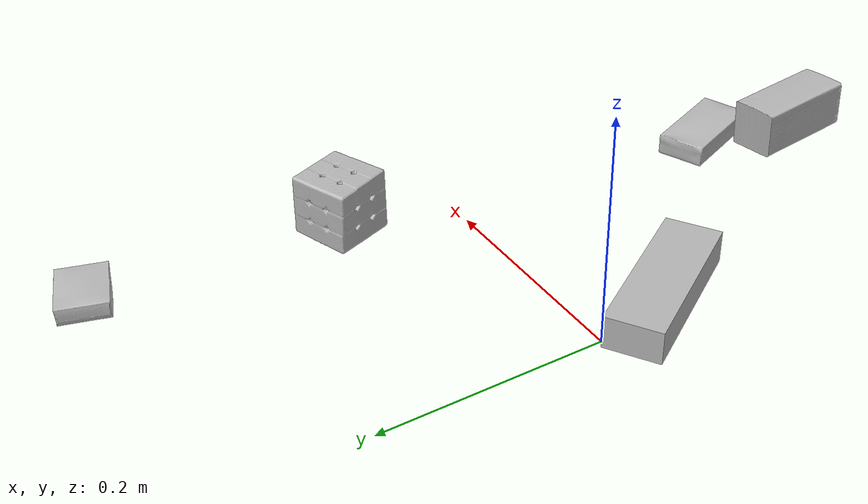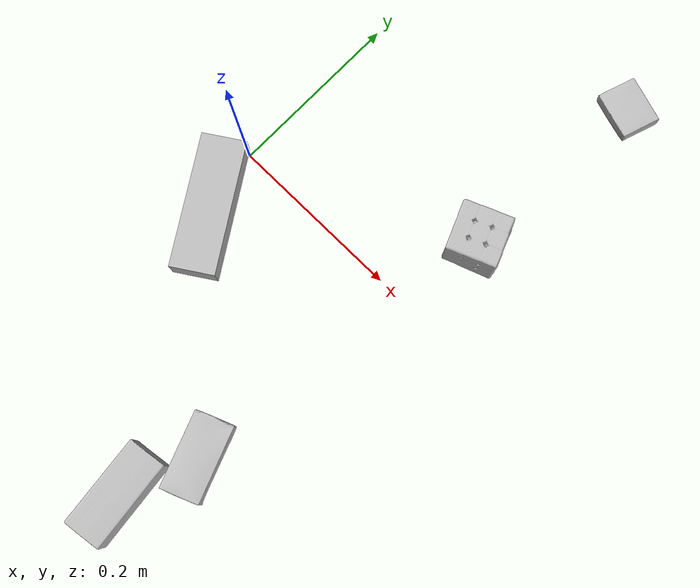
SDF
<sdf version="1.4">
  <world name="default">
    <light name="light1" type="point">
      <pose>0 0 1 0 0 0</pose>
      <diffuse>3 3 3 1</diffuse>
      <specular>3 3 3 1</specular>
    </light>
    <light name="light2" type="point">
      <pose>0 0.5 2 0 0 0</pose>
      <diffuse>1 1 1 1</diffuse>
      <specular>1 1 1 1</specular>
    </light>
    <light name="light3" type="point">
      <pose>0 0.5 2 0 0 0</pose>
      <diffuse>3 3 3 1</diffuse>
      <specular>3 3 3 1</specular>
    </light>
    <scene>
      <ambient>0.7 0.7 0.7</ambient>
    </scene>
    <model name="box1">
      <link name="link_box1">
        <collision name="default">
          <geometry>
            <mesh>
              <uri>model://wood_block/collision_meshes/collision.obj</uri>
              <scale>0.5 0.5 0.5</scale>
            </mesh>
          </geometry>
          <surface>
            <friction>
              <ode>
                <mu>0.5</mu>
                <mu2>0.5</mu2>
              </ode>
            </friction>
          <contact>
        <ode>
            <max_vel>0</max_vel>
            <min_depth>0.0001</min_depth>
            <kp>1e8</kp>
        </ode>
    </contact></surface>
        </collision>
        <visual name="default">
          <geometry>
            <mesh>
              <uri>model://wood_block/visual_meshes/visual.dae</uri>
              <scale>0.5 0.5 0.5</scale>
            </mesh>
          </geometry>
        </visual>
        <inertial>
          <mass>0.21249504387378693</mass>
          <pose>-2.906657528001233e-06 -0.00028540470520965755 0.00013204290007706732 -0.05220867383734612 -0.005192696375656893 -0.006861378651330705</pose>
          <inertia>
            <ixx>7.108762e-05</ixx>
            <iyy>0.00022456584</iyy>
            <izz>0.00022372584</izz>
            <ixy>0</ixy>
            <ixz>0</ixz>
            <iyz>0</iyz>
          </inertia>
        </inertial>
      </link>
      <pose>0.16645067930221558 -0.3456214666366577 0.02252623438835144 -0.03550607087471154 -0.008076960694448628 -1.447048230305522</pose>
    </model>
    <model name="box2">
      <link name="link_box2">
        <collision name="default">
          <geometry>
            <mesh>
              <uri>model://sugar_box/collision_meshes/collision.obj</uri>
              <scale>0.5 0.5 0.5</scale>
            </mesh>
          </geometry>
          <surface>
            <friction>
              <ode>
                <mu>0.5</mu>
                <mu2>0.5</mu2>
              </ode>
            </friction>
          <contact>
        <ode>
            <max_vel>0</max_vel>
            <min_depth>0.0001</min_depth>
            <kp>1e8</kp>
        </ode>
    </contact></surface>
        </collision>
        <visual name="default">
          <geometry>
            <mesh>
              <uri>model://sugar_box/visual_meshes/visual.dae</uri>
              <scale>0.5 0.5 0.5</scale>
            </mesh>
          </geometry>
        </visual>
        <inertial>
          <mass>0.11089310050010681</mass>
          <pose>0.0005171863595023751 1.924554817378521e-05 -0.00018182402709499002 -0.0004046262999979174 0.001050663638672674 0.002615379254561693</pose>
          <inertia>
            <ixx>2.3098954e-05</ixx>
            <iyy>7.4660566e-05</iyy>
            <izz>8.9377616e-05</izz>
            <ixy>0</ixy>
            <ixz>0</ixz>
            <iyz>0</iyz>
          </inertia>
        </inertial>
      </link>
      <pose>0.19625724852085114 -0.26468425989151 0.011399311013519764 0.0007649533075476036 -0.02343190369910897 -1.2038321621129684</pose>
    </model>
    <model name="box3">
      <link name="link_box3">
        <collision name="default">
          <geometry>
            <mesh>
              <uri>model://jenga/collision_meshes/collision.obj</uri>
              <scale>1.0 1.0 1.0</scale>
            </mesh>
          </geometry>
          <surface>
            <friction>
              <ode>
                <mu>0.5</mu>
                <mu2>0.5</mu2>
              </ode>
            </friction>
          <contact>
        <ode>
            <max_vel>0</max_vel>
            <min_depth>0.0001</min_depth>
            <kp>1e8</kp>
        </ode>
    </contact></surface>
        </collision>
        <visual name="default">
          <geometry>
            <mesh>
              <uri>model://jenga/visual_meshes/visual.dae</uri>
              <scale>1.0 1.0 1.0</scale>
            </mesh>
          </geometry>
        </visual>
        <inertial>
          <mass>0.163609579205513</mass>
          <pose>-2.502855807051674e-07 -0.0001025000965455547 -4.0923401684267446e-05 0.0 -7.34215461761844e-07 0.0</pose>
          <inertia>
            <ixx>4.527474e-05</ixx>
            <iyy>0.00030678045</iyy>
            <izz>0.0003275142</izz>
            <ixy>0</ixy>
            <ixz>0</ixz>
            <iyz>0</iyz>
          </inertia>
        </inertial>
      </link>
      <pose>0.014384197071194649 -0.07194250822067261 0.015000000596046448 3.6580337738744913e-09 -7.160495516659993e-10 2.140846391944693</pose>
    </model>
    <model name="box4">
      <link name="link_box4">
        <collision name="default">
          <geometry>
            <mesh>
              <uri>model://rubiks_cube/collision_meshes/collision.obj</uri>
              <scale>1.0 1.0 1.0</scale>
            </mesh>
          </geometry>
          <surface>
            <friction>
              <ode>
                <mu>0.5</mu>
                <mu2>0.5</mu2>
              </ode>
            </friction>
          <contact>
        <ode>
            <max_vel>0</max_vel>
            <min_depth>0.0001</min_depth>
            <kp>1e8</kp>
        </ode>
    </contact></surface>
        </collision>
        <visual name="default">
          <geometry>
            <mesh>
              <uri>model://rubiks_cube/visual_meshes/visual.dae</uri>
              <scale>1.0 1.0 1.0</scale>
            </mesh>
          </geometry>
        </visual>
        <inertial>
          <mass>0.25540637969970703</mass>
          <pose>2.6721041649580002e-05 5.2569666877388954e-05 -7.264316082000732e-06 -0.054671713185757496 -0.09814043055608018 -0.034455401135126476</pose>
          <inertia>
            <ixx>0.00014112917</ixx>
            <iyy>0.000140471</iyy>
            <izz>0.00014229867</izz>
            <ixy>0</ixy>
            <ixz>0</ixz>
            <iyz>0</iyz>
          </inertia>
        </inertial>
      </link>
      <pose>0.24615828692913055 0.09958387911319733 0.028679009526968002 5.4212753734294696e-08 2.6227904286450844e-08 -1.1882754945525447</pose>
    </model>
    <model name="box5">
      <link name="link_box5">
        <collision name="default">
          <geometry>
            <mesh>
              <uri>model://pudding_box/collision_meshes/collision.obj</uri>
              <scale>0.5 0.5 0.5</scale>
            </mesh>
          </geometry>
          <surface>
            <friction>
              <ode>
                <mu>0.5</mu>
                <mu2>0.5</mu2>
              </ode>
            </friction>
          <contact>
        <ode>
            <max_vel>0</max_vel>
            <min_depth>0.0001</min_depth>
            <kp>1e8</kp>
        </ode>
    </contact></surface>
        </collision>
        <visual name="default">
          <geometry>
            <mesh>
              <uri>model://pudding_box/visual_meshes/visual.dae</uri>
              <scale>0.5 0.5 0.5</scale>
            </mesh>
          </geometry>
        </visual>
        <inertial>
          <mass>0.04848850890994072</mass>
          <pose>0.00024474109522998333 0.000403394311433658 -0.0002594413817860186 0.0052131017882315455 -0.0066037973363940366 0.020079830752013892</pose>
          <inertia>
            <ixx>1.370344e-05</ixx>
            <iyy>9.219772e-06</iyy>
            <izz>2.023671e-05</izz>
            <ixy>0</ixy>
            <ixz>0</ixz>
            <iyz>0</iyz>
          </inertia>
        </inertial>
      </link>
      <pose>0.26156213879585266 0.3248094916343689 0.009862902574241161 0.022348310221520215 -0.011391827151120642 -1.8919216498414735</pose>
    </model>
  <physics type="ode">
      <max_contacts>50</max_contacts>
      <ode>
        <solver>
          <type>quick</type>
          <iters>75</iters>
        </solver>
        <constraints>
          <contact_max_correcting_vel>0</contact_max_correcting_vel>
          <contact_surface_layer>0</contact_surface_layer>
        </constraints>
      </ode>
    </physics></world>
</sdf>
